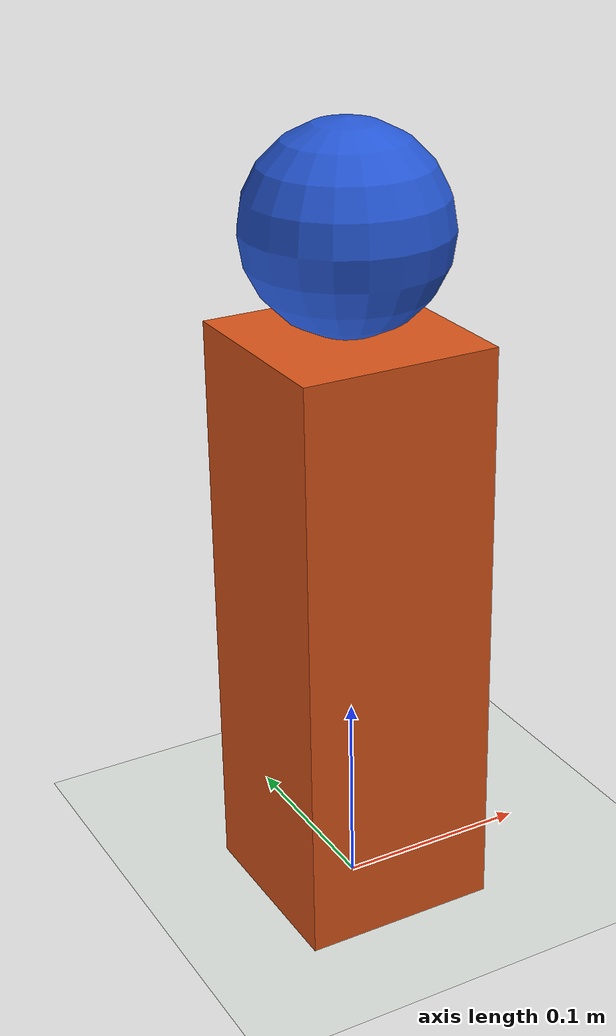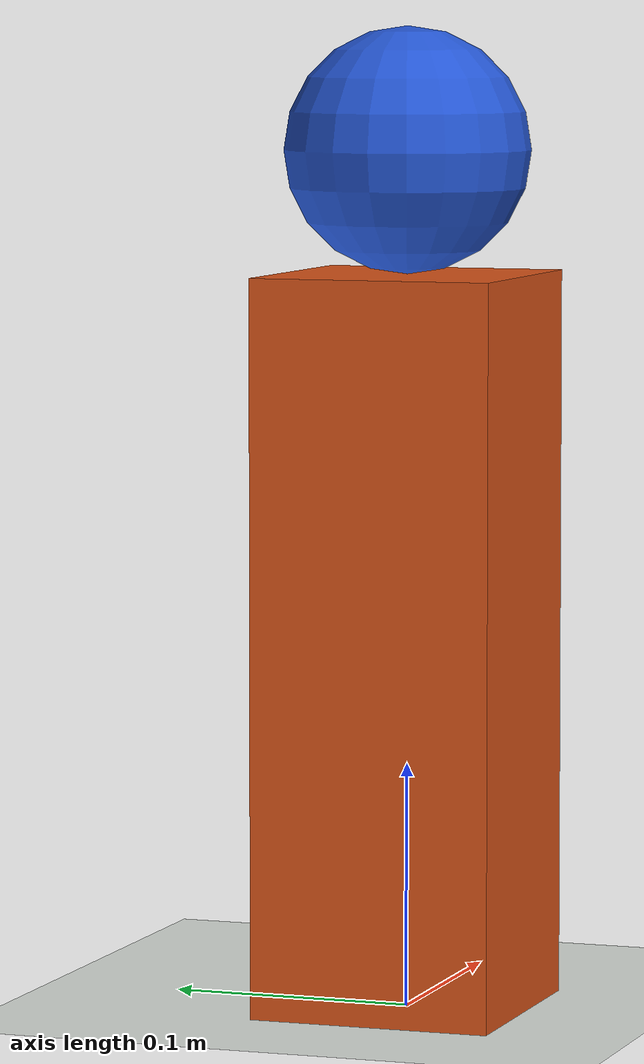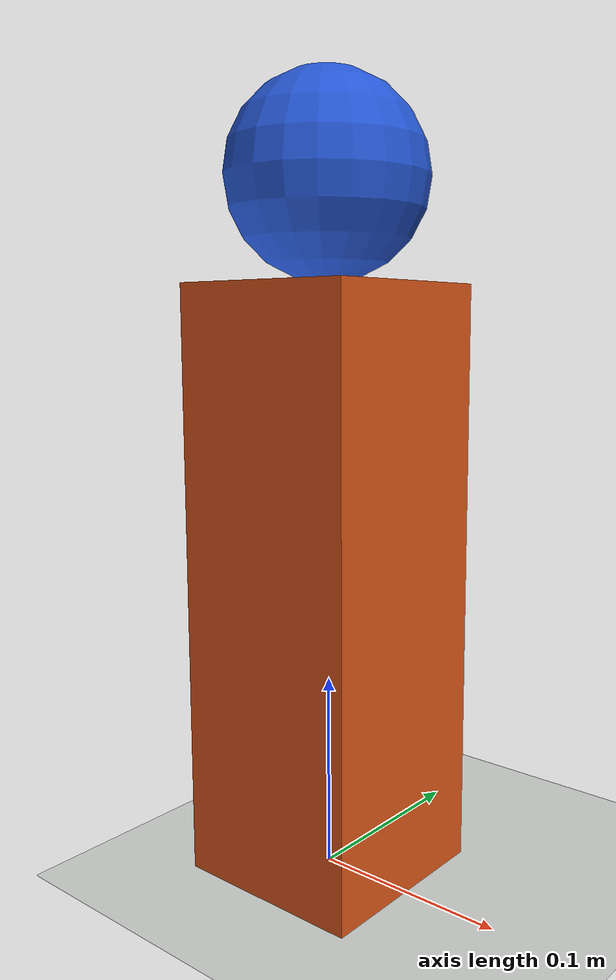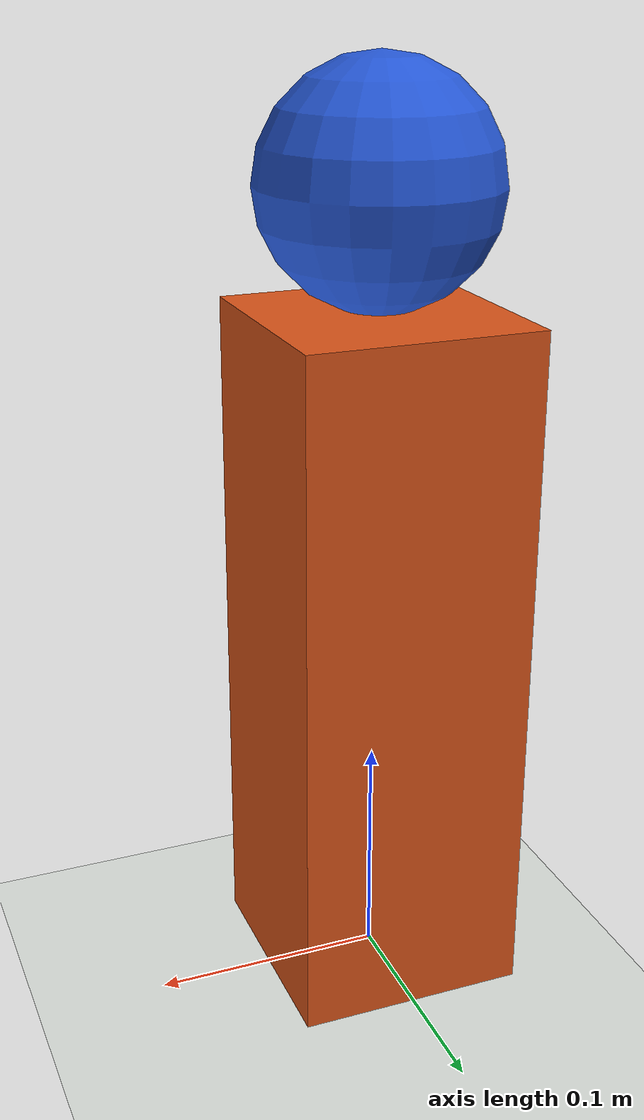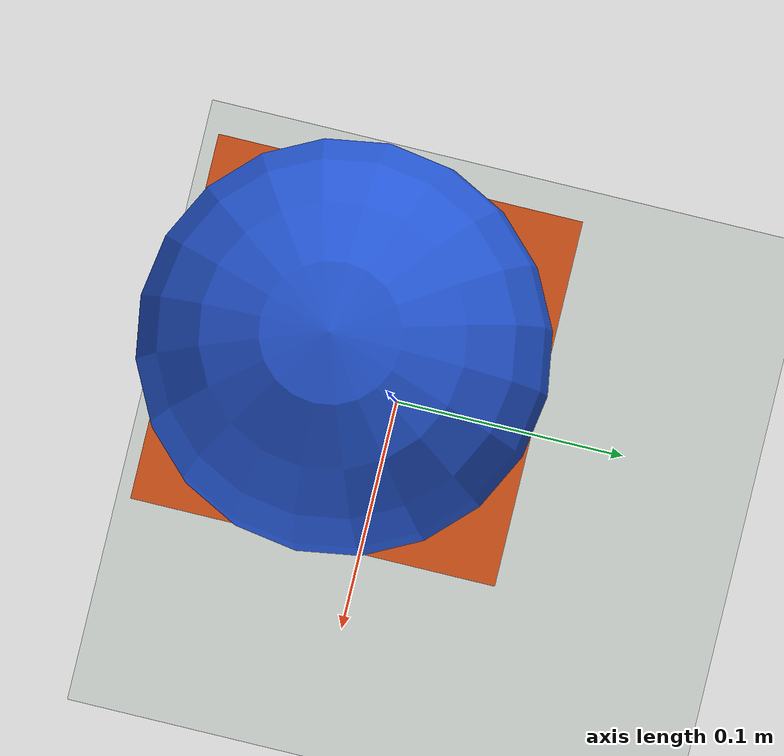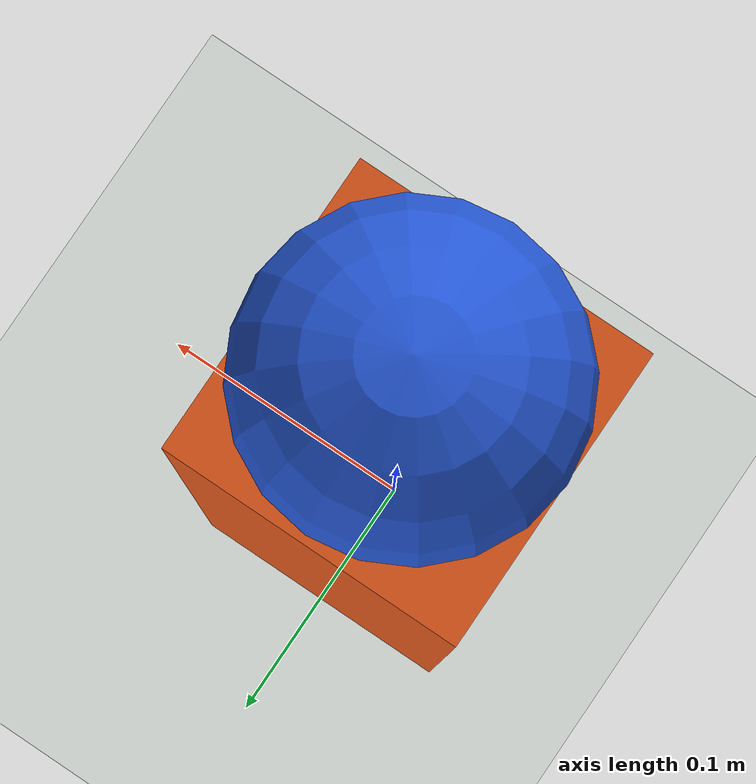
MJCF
<!-- BROKEN (debugging clinic, case 6): images from camera "front" come out upside down. -->
<mujoco model="upside_down_camera">
  <compiler angle="radian" autolimits="true"/>
  <worldbody>
    <light pos="0 -1 2" dir="0 0.5 -1"/>
    <geom name="floor" type="plane" size="1 1 0.05" rgba=".86 .88 .86 1"/>
    <body name="tower" pos="0 0 0.15">
      <geom type="box" size="0.05 0.05 0.15" rgba=".85 .33 .1 1"/>
      <geom type="sphere" pos="0 0 0.2" size="0.05" rgba=".15 .35 .85 1"/>
    </body>
    <camera name="front" pos="1.2 0 0.3" xyaxes="0 -1 0 0 0 -1"/>
  </worldbody>
</mujoco>
